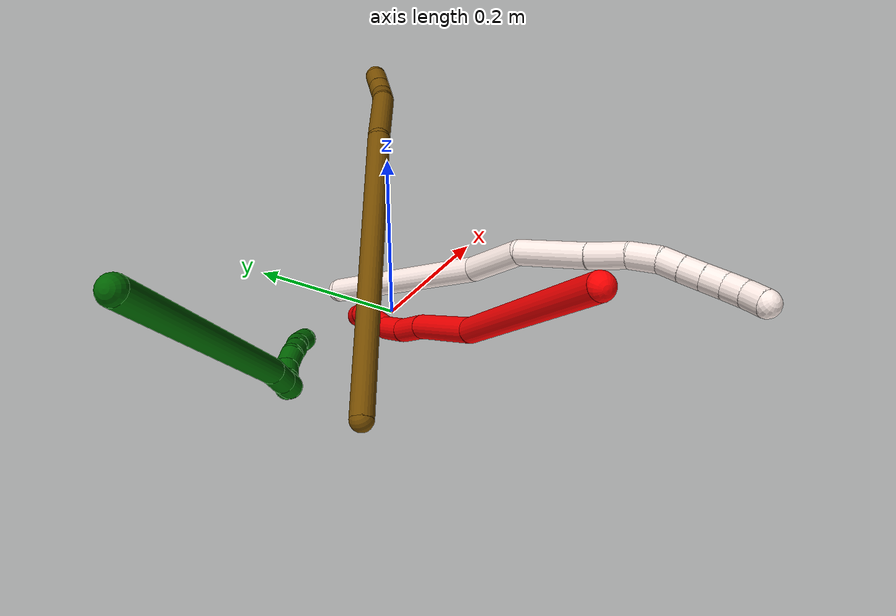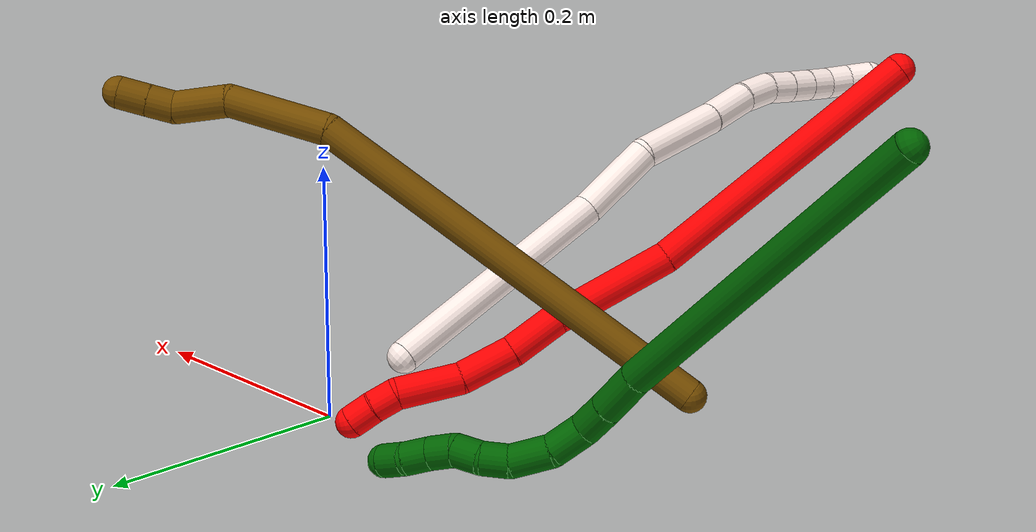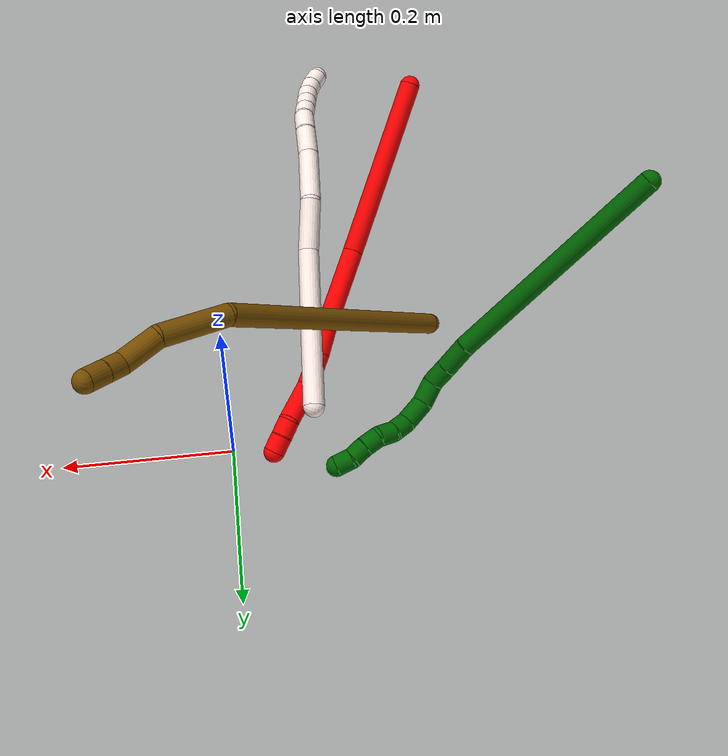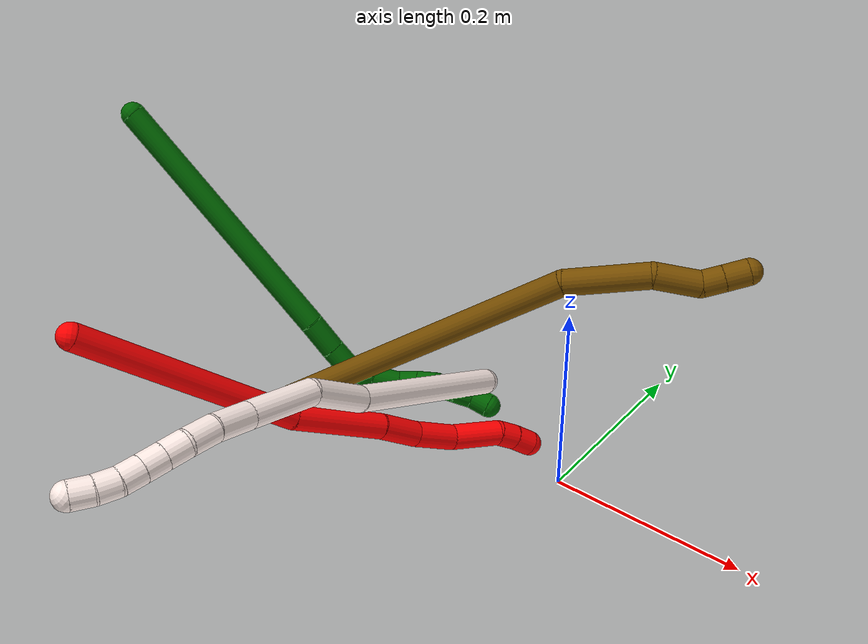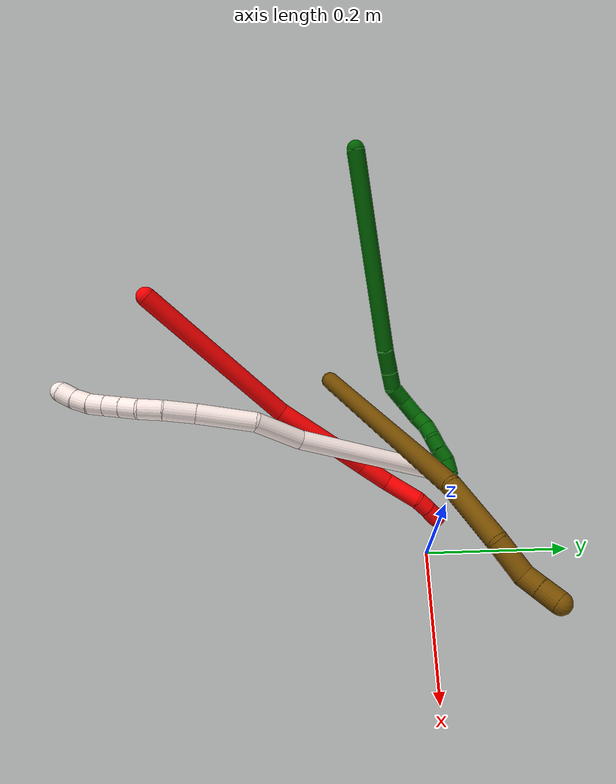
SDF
<sdf version="1.7">
 <world name="default">
  <model name="2">
   <static>0</static>
   <link name="2">
    <collision name="collision-cylinder-e_1_1_4">
     <pose>0.029552 -0.036676 -0.103546 2.80118 0.262799 1.31106</pose>
     <geometry><cylinder><radius>0.0125</radius><length>0.227509</length></cylinder></geometry>
     <surface>
      <friction><ode><mu>1.16</mu><mu2>1.16</mu2><slip1>0</slip1><slip2>0</slip2></ode></friction>
      <contact><ode><kp>1e+06</kp><kd>1</kd><max_vel>0</max_vel><min_depth>0.001</min_depth></ode></contact>
     </surface>
    </collision>
    <visual name="visual-cylinder-e_1_1_4">
     <pose>0.029552 -0.036676 -0.103546 2.80118 0.262799 1.31106</pose>
     <geometry><cylinder><radius>0.0125</radius><length>0.227509</length></cylinder></geometry>
     <material><ambient>1 0 0 1</ambient></material>
    </visual>
    <collision name="collision-cylinder-e_2_4_5">
     <pose>0.061602 -0.088009 -0.252565 2.82978 0.052256 0.329516</pose>
     <geometry><cylinder><radius>0.0125</radius><length>0.095686</length></cylinder></geometry>
     <surface>
      <friction><ode><mu>1.16</mu><mu2>1.16</mu2><slip1>0</slip1><slip2>0</slip2></ode></friction>
      <contact><ode><kp>1e+06</kp><kd>1</kd><max_vel>0</max_vel><min_depth>0.001</min_depth></ode></contact>
     </surface>
    </collision>
    <visual name="visual-cylinder-e_2_4_5">
     <pose>0.061602 -0.088009 -0.252565 2.82978 0.052256 0.329516</pose>
     <geometry><cylinder><radius>0.0125</radius><length>0.095686</length></cylinder></geometry>
     <material><ambient>1 0 0 1</ambient></material>
    </visual>
    <collision name="collision-cylinder-e_3_5_6">
     <pose>0.06745 -0.110586 -0.317532 2.7557 0.157833 0.769215</pose>
     <geometry><cylinder><radius>0.0125</radius><length>0.04261</length></cylinder></geometry>
     <surface>
      <friction><ode><mu>1.16</mu><mu2>1.16</mu2><slip1>0</slip1><slip2>0</slip2></ode></friction>
      <contact><ode><kp>1e+06</kp><kd>1</kd><max_vel>0</max_vel><min_depth>0.001</min_depth></ode></contact>
     </surface>
    </collision>
    <visual name="visual-cylinder-e_3_5_6">
     <pose>0.06745 -0.110586 -0.317532 2.7557 0.157833 0.769215</pose>
     <geometry><cylinder><radius>0.0125</radius><length>0.04261</length></cylinder></geometry>
     <material><ambient>1 0 0 1</ambient></material>
    </visual>
    <collision name="collision-cylinder-e_4_6_7">
     <pose>0.071557 -0.124767 -0.357898 2.85013 0.034801 0.236033</pose>
     <geometry><cylinder><radius>0.0125</radius><length>0.043609</length></cylinder></geometry>
     <surface>
      <friction><ode><mu>1.16</mu><mu2>1.16</mu2><slip1>0</slip1><slip2>0</slip2></ode></friction>
      <contact><ode><kp>1e+06</kp><kd>1</kd><max_vel>0</max_vel><min_depth>0.001</min_depth></ode></contact>
     </surface>
    </collision>
    <visual name="visual-cylinder-e_4_6_7">
     <pose>0.071557 -0.124767 -0.357898 2.85013 0.034801 0.236033</pose>
     <geometry><cylinder><radius>0.0125</radius><length>0.043609</length></cylinder></geometry>
     <material><ambient>1 0 0 1</ambient></material>
    </visual>
    <collision name="collision-cylinder-e_5_7_8">
     <pose>0.067951 -0.134702 -0.403278 2.99281 -0.174331 -1.72926</pose>
     <geometry><cylinder><radius>0.0125</radius><length>0.050327</length></cylinder></geometry>
     <surface>
      <friction><ode><mu>1.16</mu><mu2>1.16</mu2><slip1>0</slip1><slip2>0</slip2></ode></friction>
      <contact><ode><kp>1e+06</kp><kd>1</kd><max_vel>0</max_vel><min_depth>0.001</min_depth></ode></contact>
     </surface>
    </collision>
    <visual name="visual-cylinder-e_5_7_8">
     <pose>0.067951 -0.134702 -0.403278 2.99281 -0.174331 -1.72926</pose>
     <geometry><cylinder><radius>0.0125</radius><length>0.050327</length></cylinder></geometry>
     <material><ambient>1 0 0 1</ambient></material>
    </visual>
    <collision name="collision-cylinder-e_6_8_9">
     <pose>0.065116 -0.140553 -0.437444 2.91989 0.153281 1.20785</pose>
     <geometry><cylinder><radius>0.0125</radius><length>0.020035</length></cylinder></geometry>
     <surface>
      <friction><ode><mu>1.16</mu><mu2>1.16</mu2><slip1>0</slip1><slip2>0</slip2></ode></friction>
      <contact><ode><kp>1e+06</kp><kd>1</kd><max_vel>0</max_vel><min_depth>0.001</min_depth></ode></contact>
     </surface>
    </collision>
    <visual name="visual-cylinder-e_6_8_9">
     <pose>0.065116 -0.140553 -0.437444 2.91989 0.153281 1.20785</pose>
     <geometry><cylinder><radius>0.0125</radius><length>0.020035</length></cylinder></geometry>
     <material><ambient>1 0 0 1</ambient></material>
    </visual>
    <collision name="collision-cylinder-e_7_9_2">
     <pose>0.069306 -0.144835 -0.456627 2.92401 0.266212 1.77307</pose>
     <geometry><cylinder><radius>0.0125</radius><length>0.020223</length></cylinder></geometry>
     <surface>
      <friction><ode><mu>1.16</mu><mu2>1.16</mu2><slip1>0</slip1><slip2>0</slip2></ode></friction>
      <contact><ode><kp>1e+06</kp><kd>1</kd><max_vel>0</max_vel><min_depth>0.001</min_depth></ode></contact>
     </surface>
    </collision>
    <visual name="visual-cylinder-e_7_9_2">
     <pose>0.069306 -0.144835 -0.456627 2.92401 0.266212 1.77307</pose>
     <geometry><cylinder><radius>0.0125</radius><length>0.020223</length></cylinder></geometry>
     <material><ambient>1 0 0 1</ambient></material>
    </visual>
    <collision name="collision-sphere-2">
     <pose>0.071966 -0.146941 -0.466153 0 -0 0</pose>
     <geometry><sphere><radius>0.0125</radius></sphere></geometry>
     <surface>
      <friction><ode><mu>1.16</mu><mu2>1.16</mu2><slip1>0</slip1><slip2>0</slip2></ode></friction>
      <contact><ode><kp>1e+06</kp><kd>1</kd><max_vel>0</max_vel><min_depth>0.001</min_depth></ode></contact>
     </surface>
    </collision>
    <visual name="visual-sphere-2">
     <pose>0.071966 -0.146941 -0.466153 0 -0 0</pose>
     <geometry><sphere><radius>0.0125</radius></sphere></geometry>
     <material><ambient>1 0 0 1</ambient></material>
    </visual>
    <collision name="collision-sphere-9">
     <pose>0.066646 -0.142729 -0.447102 0 -0 0</pose>
     <geometry><sphere><radius>0.0125</radius></sphere></geometry>
     <surface>
      <friction><ode><mu>1.16</mu><mu2>1.16</mu2><slip1>0</slip1><slip2>0</slip2></ode></friction>
      <contact><ode><kp>1e+06</kp><kd>1</kd><max_vel>0</max_vel><min_depth>0.001</min_depth></ode></contact>
     </surface>
    </collision>
    <visual name="visual-sphere-9">
     <pose>0.066646 -0.142729 -0.447102 0 -0 0</pose>
     <geometry><sphere><radius>0.0125</radius></sphere></geometry>
     <material><ambient>1 0 0 1</ambient></material>
    </visual>
    <collision name="collision-sphere-4">
     <pose>0.059103 -0.073352 -0.207091 0 -0 0</pose>
     <geometry><sphere><radius>0.0125</radius></sphere></geometry>
     <surface>
      <friction><ode><mu>1.16</mu><mu2>1.16</mu2><slip1>0</slip1><slip2>0</slip2></ode></friction>
      <contact><ode><kp>1e+06</kp><kd>1</kd><max_vel>0</max_vel><min_depth>0.001</min_depth></ode></contact>
     </surface>
    </collision>
    <visual name="visual-sphere-4">
     <pose>0.059103 -0.073352 -0.207091 0 -0 0</pose>
     <geometry><sphere><radius>0.0125</radius></sphere></geometry>
     <material><ambient>1 0 0 1</ambient></material>
    </visual>
    <collision name="collision-sphere-1">
     <geometry><sphere><radius>0.0125</radius></sphere></geometry>
     <surface>
      <friction><ode><mu>1.16</mu><mu2>1.16</mu2><slip1>0</slip1><slip2>0</slip2></ode></friction>
      <contact><ode><kp>1e+06</kp><kd>1</kd><max_vel>0</max_vel><min_depth>0.001</min_depth></ode></contact>
     </surface>
    </collision>
    <visual name="visual-sphere-1">
     <geometry><sphere><radius>0.0125</radius></sphere></geometry>
     <material><ambient>1 0 0 1</ambient></material>
    </visual>
    <collision name="collision-sphere-8">
     <pose>0.063587 -0.138376 -0.427786 0 -0 0</pose>
     <geometry><sphere><radius>0.0125</radius></sphere></geometry>
     <surface>
      <friction><ode><mu>1.16</mu><mu2>1.16</mu2><slip1>0</slip1><slip2>0</slip2></ode></friction>
      <contact><ode><kp>1e+06</kp><kd>1</kd><max_vel>0</max_vel><min_depth>0.001</min_depth></ode></contact>
     </surface>
    </collision>
    <visual name="visual-sphere-8">
     <pose>0.063587 -0.138376 -0.427786 0 -0 0</pose>
     <geometry><sphere><radius>0.0125</radius></sphere></geometry>
     <material><ambient>1 0 0 1</ambient></material>
    </visual>
    <collision name="collision-sphere-5">
     <pose>0.064101 -0.102667 -0.298039 0 -0 0</pose>
     <geometry><sphere><radius>0.0125</radius></sphere></geometry>
     <surface>
      <friction><ode><mu>1.16</mu><mu2>1.16</mu2><slip1>0</slip1><slip2>0</slip2></ode></friction>
      <contact><ode><kp>1e+06</kp><kd>1</kd><max_vel>0</max_vel><min_depth>0.001</min_depth></ode></contact>
     </surface>
    </collision>
    <visual name="visual-sphere-5">
     <pose>0.064101 -0.102667 -0.298039 0 -0 0</pose>
     <geometry><sphere><radius>0.0125</radius></sphere></geometry>
     <material><ambient>1 0 0 1</ambient></material>
    </visual>
    <collision name="collision-sphere-6">
     <pose>0.070799 -0.118505 -0.337025 0 -0 0</pose>
     <geometry><sphere><radius>0.0125</radius></sphere></geometry>
     <surface>
      <friction><ode><mu>1.16</mu><mu2>1.16</mu2><slip1>0</slip1><slip2>0</slip2></ode></friction>
      <contact><ode><kp>1e+06</kp><kd>1</kd><max_vel>0</max_vel><min_depth>0.001</min_depth></ode></contact>
     </surface>
    </collision>
    <visual name="visual-sphere-6">
     <pose>0.070799 -0.118505 -0.337025 0 -0 0</pose>
     <geometry><sphere><radius>0.0125</radius></sphere></geometry>
     <material><ambient>1 0 0 1</ambient></material>
    </visual>
    <collision name="collision-sphere-7">
     <pose>0.072316 -0.131028 -0.37877 0 -0 0</pose>
     <geometry><sphere><radius>0.0125</radius></sphere></geometry>
     <surface>
      <friction><ode><mu>1.16</mu><mu2>1.16</mu2><slip1>0</slip1><slip2>0</slip2></ode></friction>
      <contact><ode><kp>1e+06</kp><kd>1</kd><max_vel>0</max_vel><min_depth>0.001</min_depth></ode></contact>
     </surface>
    </collision>
    <visual name="visual-sphere-7">
     <pose>0.072316 -0.131028 -0.37877 0 -0 0</pose>
     <geometry><sphere><radius>0.0125</radius></sphere></geometry>
     <material><ambient>1 0 0 1</ambient></material>
    </visual>
    <inertial>
     <pose>0.049477 -0.078885 -0.230314 0 -0 0</pose>
     <mass>0.5</mass>
     <inertia>
      <ixx>0.001283</ixx>
      <ixy>0</ixy>
      <ixz>0</ixz>
      <iyy>0.000699</iyy>
      <iyz>0</iyz>
      <izz>5.3e-05</izz>
     </inertia>
    </inertial>
   </link>
   <pose>-0.260994 -0.352629 0.263068 1.00253 1.04981 -1.26838</pose>
  </model>
  <model name="6">
   <static>0</static>
   <link name="6">
    <collision name="collision-cylinder-e_1_1_4">
     <pose>-0.03055 -0.001041 -0.135612 3.13392 -0.221573 -3.07262</pose>
     <geometry><cylinder><radius>0.0125</radius><length>0.278029</length></cylinder></geometry>
     <surface>
      <friction><ode><mu>1.16</mu><mu2>1.16</mu2><slip1>0</slip1><slip2>0</slip2></ode></friction>
      <contact><ode><kp>1e+06</kp><kd>1</kd><max_vel>0</max_vel><min_depth>0.001</min_depth></ode></contact>
     </surface>
    </collision>
    <visual name="visual-cylinder-e_1_1_4">
     <pose>-0.03055 -0.001041 -0.135612 3.13392 -0.221573 -3.07262</pose>
     <geometry><cylinder><radius>0.0125</radius><length>0.278029</length></cylinder></geometry>
     <material><ambient>0 0.392157 0.003922 1</ambient></material>
    </visual>
    <collision name="collision-cylinder-e_2_4_5">
     <pose>-0.065794 -0.000406 -0.288128 -3.04279 -0.269561 2.44231</pose>
     <geometry><cylinder><radius>0.0125</radius><length>0.035248</length></cylinder></geometry>
     <surface>
      <friction><ode><mu>1.16</mu><mu2>1.16</mu2><slip1>0</slip1><slip2>0</slip2></ode></friction>
      <contact><ode><kp>1e+06</kp><kd>1</kd><max_vel>0</max_vel><min_depth>0.001</min_depth></ode></contact>
     </surface>
    </collision>
    <visual name="visual-cylinder-e_2_4_5">
     <pose>-0.065794 -0.000406 -0.288128 -3.04279 -0.269561 2.44231</pose>
     <geometry><cylinder><radius>0.0125</radius><length>0.035248</length></cylinder></geometry>
     <material><ambient>0 0.392157 0.003922 1</ambient></material>
    </visual>
    <collision name="collision-cylinder-e_3_5_6">
     <pose>-0.073441 0.002275 -0.317409 -3.06056 -0.233488 2.47602</pose>
     <geometry><cylinder><radius>0.0125</radius><length>0.025526</length></cylinder></geometry>
     <surface>
      <friction><ode><mu>1.16</mu><mu2>1.16</mu2><slip1>0</slip1><slip2>0</slip2></ode></friction>
      <contact><ode><kp>1e+06</kp><kd>1</kd><max_vel>0</max_vel><min_depth>0.001</min_depth></ode></contact>
     </surface>
    </collision>
    <visual name="visual-cylinder-e_3_5_6">
     <pose>-0.073441 0.002275 -0.317409 -3.06056 -0.233488 2.47602</pose>
     <geometry><cylinder><radius>0.0125</radius><length>0.025526</length></cylinder></geometry>
     <material><ambient>0 0.392157 0.003922 1</ambient></material>
    </visual>
    <collision name="collision-cylinder-e_4_6_7">
     <pose>-0.075247 0.008921 -0.342562 -2.72584 0.081899 -0.383725</pose>
     <geometry><cylinder><radius>0.0125</radius><length>0.028029</length></cylinder></geometry>
     <surface>
      <friction><ode><mu>1.16</mu><mu2>1.16</mu2><slip1>0</slip1><slip2>0</slip2></ode></friction>
      <contact><ode><kp>1e+06</kp><kd>1</kd><max_vel>0</max_vel><min_depth>0.001</min_depth></ode></contact>
     </surface>
    </collision>
    <visual name="visual-cylinder-e_4_6_7">
     <pose>-0.075247 0.008921 -0.342562 -2.72584 0.081899 -0.383725</pose>
     <geometry><cylinder><radius>0.0125</radius><length>0.028029</length></cylinder></geometry>
     <material><ambient>0 0.392157 0.003922 1</ambient></material>
    </visual>
    <collision name="collision-cylinder-e_5_7_8">
     <pose>-0.068552 0.017694 -0.36959 -2.92519 0.363386 -2.07368</pose>
     <geometry><cylinder><radius>0.0125</radius><length>0.031219</length></cylinder></geometry>
     <surface>
      <friction><ode><mu>1.16</mu><mu2>1.16</mu2><slip1>0</slip1><slip2>0</slip2></ode></friction>
      <contact><ode><kp>1e+06</kp><kd>1</kd><max_vel>0</max_vel><min_depth>0.001</min_depth></ode></contact>
     </surface>
    </collision>
    <visual name="visual-cylinder-e_5_7_8">
     <pose>-0.068552 0.017694 -0.36959 -2.92519 0.363386 -2.07368</pose>
     <geometry><cylinder><radius>0.0125</radius><length>0.031219</length></cylinder></geometry>
     <material><ambient>0 0.392157 0.003922 1</ambient></material>
    </visual>
    <collision name="collision-cylinder-e_6_8_9">
     <pose>-0.056263 0.021119 -0.392004 -3.10581 0.68988 -3.04207</pose>
     <geometry><cylinder><radius>0.0125</radius><length>0.021184</length></cylinder></geometry>
     <surface>
      <friction><ode><mu>1.16</mu><mu2>1.16</mu2><slip1>0</slip1><slip2>0</slip2></ode></friction>
      <contact><ode><kp>1e+06</kp><kd>1</kd><max_vel>0</max_vel><min_depth>0.001</min_depth></ode></contact>
     </surface>
    </collision>
    <visual name="visual-cylinder-e_6_8_9">
     <pose>-0.056263 0.021119 -0.392004 -3.10581 0.68988 -3.04207</pose>
     <geometry><cylinder><radius>0.0125</radius><length>0.021184</length></cylinder></geometry>
     <material><ambient>0 0.392157 0.003922 1</ambient></material>
    </visual>
    <collision name="collision-cylinder-e_7_9_10">
     <pose>-0.043365 0.018736 -0.407981 2.81161 0.640687 2.21131</pose>
     <geometry><cylinder><radius>0.0125</radius><length>0.020602</length></cylinder></geometry>
     <surface>
      <friction><ode><mu>1.16</mu><mu2>1.16</mu2><slip1>0</slip1><slip2>0</slip2></ode></friction>
      <contact><ode><kp>1e+06</kp><kd>1</kd><max_vel>0</max_vel><min_depth>0.001</min_depth></ode></contact>
     </surface>
    </collision>
    <visual name="visual-cylinder-e_7_9_10">
     <pose>-0.043365 0.018736 -0.407981 2.81161 0.640687 2.21131</pose>
     <geometry><cylinder><radius>0.0125</radius><length>0.020602</length></cylinder></geometry>
     <material><ambient>0 0.392157 0.003922 1</ambient></material>
    </visual>
    <collision name="collision-cylinder-e_8_10_11">
     <pose>-0.033946 0.015653 -0.425303 3.09882 0.33011 2.88615</pose>
     <geometry><cylinder><radius>0.0125</radius><length>0.020122</length></cylinder></geometry>
     <surface>
      <friction><ode><mu>1.16</mu><mu2>1.16</mu2><slip1>0</slip1><slip2>0</slip2></ode></friction>
      <contact><ode><kp>1e+06</kp><kd>1</kd><max_vel>0</max_vel><min_depth>0.001</min_depth></ode></contact>
     </surface>
    </collision>
    <visual name="visual-cylinder-e_8_10_11">
     <pose>-0.033946 0.015653 -0.425303 3.09882 0.33011 2.88615</pose>
     <geometry><cylinder><radius>0.0125</radius><length>0.020122</length></cylinder></geometry>
     <material><ambient>0 0.392157 0.003922 1</ambient></material>
    </visual>
    <collision name="collision-cylinder-e_9_11_12">
     <pose>-0.027441 0.016168 -0.444244 -3.04412 0.329741 -2.57125</pose>
     <geometry><cylinder><radius>0.0125</radius><length>0.020034</length></cylinder></geometry>
     <surface>
      <friction><ode><mu>1.16</mu><mu2>1.16</mu2><slip1>0</slip1><slip2>0</slip2></ode></friction>
      <contact><ode><kp>1e+06</kp><kd>1</kd><max_vel>0</max_vel><min_depth>0.001</min_depth></ode></contact>
     </surface>
    </collision>
    <visual name="visual-cylinder-e_9_11_12">
     <pose>-0.027441 0.016168 -0.444244 -3.04412 0.329741 -2.57125</pose>
     <geometry><cylinder><radius>0.0125</radius><length>0.020034</length></cylinder></geometry>
     <material><ambient>0 0.392157 0.003922 1</ambient></material>
    </visual>
    <collision name="collision-cylinder-e_10_12_2">
     <pose>-0.022117 0.01494 -0.463223 2.92002 0.209515 1.51444</pose>
     <geometry><cylinder><radius>0.0125</radius><length>0.020008</length></cylinder></geometry>
     <surface>
      <friction><ode><mu>1.16</mu><mu2>1.16</mu2><slip1>0</slip1><slip2>0</slip2></ode></friction>
      <contact><ode><kp>1e+06</kp><kd>1</kd><max_vel>0</max_vel><min_depth>0.001</min_depth></ode></contact>
     </surface>
    </collision>
    <visual name="visual-cylinder-e_10_12_2">
     <pose>-0.022117 0.01494 -0.463223 2.92002 0.209515 1.51444</pose>
     <geometry><cylinder><radius>0.0125</radius><length>0.020008</length></cylinder></geometry>
     <material><ambient>0 0.392157 0.003922 1</ambient></material>
    </visual>
    <collision name="collision-sphere-2">
     <pose>-0.020036 0.01279 -0.472769 0 -0 0</pose>
     <geometry><sphere><radius>0.0125</radius></sphere></geometry>
     <surface>
      <friction><ode><mu>1.16</mu><mu2>1.16</mu2><slip1>0</slip1><slip2>0</slip2></ode></friction>
      <contact><ode><kp>1e+06</kp><kd>1</kd><max_vel>0</max_vel><min_depth>0.001</min_depth></ode></contact>
     </surface>
    </collision>
    <visual name="visual-sphere-2">
     <pose>-0.020036 0.01279 -0.472769 0 -0 0</pose>
     <geometry><sphere><radius>0.0125</radius></sphere></geometry>
     <material><ambient>0 0.392157 0.003922 1</ambient></material>
    </visual>
    <collision name="collision-sphere-12">
     <pose>-0.024198 0.017091 -0.453677 0 -0 0</pose>
     <geometry><sphere><radius>0.0125</radius></sphere></geometry>
     <surface>
      <friction><ode><mu>1.16</mu><mu2>1.16</mu2><slip1>0</slip1><slip2>0</slip2></ode></friction>
      <contact><ode><kp>1e+06</kp><kd>1</kd><max_vel>0</max_vel><min_depth>0.001</min_depth></ode></contact>
     </surface>
    </collision>
    <visual name="visual-sphere-12">
     <pose>-0.024198 0.017091 -0.453677 0 -0 0</pose>
     <geometry><sphere><radius>0.0125</radius></sphere></geometry>
     <material><ambient>0 0.392157 0.003922 1</ambient></material>
    </visual>
    <collision name="collision-sphere-11">
     <pose>-0.030685 0.015246 -0.434812 0 -0 0</pose>
     <geometry><sphere><radius>0.0125</radius></sphere></geometry>
     <surface>
      <friction><ode><mu>1.16</mu><mu2>1.16</mu2><slip1>0</slip1><slip2>0</slip2></ode></friction>
      <contact><ode><kp>1e+06</kp><kd>1</kd><max_vel>0</max_vel><min_depth>0.001</min_depth></ode></contact>
     </surface>
    </collision>
    <visual name="visual-sphere-11">
     <pose>-0.030685 0.015246 -0.434812 0 -0 0</pose>
     <geometry><sphere><radius>0.0125</radius></sphere></geometry>
     <material><ambient>0 0.392157 0.003922 1</ambient></material>
    </visual>
    <collision name="collision-sphere-10">
     <pose>-0.037207 0.01606 -0.415793 0 -0 0</pose>
     <geometry><sphere><radius>0.0125</radius></sphere></geometry>
     <surface>
      <friction><ode><mu>1.16</mu><mu2>1.16</mu2><slip1>0</slip1><slip2>0</slip2></ode></friction>
      <contact><ode><kp>1e+06</kp><kd>1</kd><max_vel>0</max_vel><min_depth>0.001</min_depth></ode></contact>
     </surface>
    </collision>
    <visual name="visual-sphere-10">
     <pose>-0.037207 0.01606 -0.415793 0 -0 0</pose>
     <geometry><sphere><radius>0.0125</radius></sphere></geometry>
     <material><ambient>0 0.392157 0.003922 1</ambient></material>
    </visual>
    <collision name="collision-sphere-9">
     <pose>-0.049522 0.021412 -0.400168 0 -0 0</pose>
     <geometry><sphere><radius>0.0125</radius></sphere></geometry>
     <surface>
      <friction><ode><mu>1.16</mu><mu2>1.16</mu2><slip1>0</slip1><slip2>0</slip2></ode></friction>
      <contact><ode><kp>1e+06</kp><kd>1</kd><max_vel>0</max_vel><min_depth>0.001</min_depth></ode></contact>
     </surface>
    </collision>
    <visual name="visual-sphere-9">
     <pose>-0.049522 0.021412 -0.400168 0 -0 0</pose>
     <geometry><sphere><radius>0.0125</radius></sphere></geometry>
     <material><ambient>0 0.392157 0.003922 1</ambient></material>
    </visual>
    <collision name="collision-sphere-4">
     <pose>-0.061101 -0.002082 -0.271224 0 -0 0</pose>
     <geometry><sphere><radius>0.0125</radius></sphere></geometry>
     <surface>
      <friction><ode><mu>1.16</mu><mu2>1.16</mu2><slip1>0</slip1><slip2>0</slip2></ode></friction>
      <contact><ode><kp>1e+06</kp><kd>1</kd><max_vel>0</max_vel><min_depth>0.001</min_depth></ode></contact>
     </surface>
    </collision>
    <visual name="visual-sphere-4">
     <pose>-0.061101 -0.002082 -0.271224 0 -0 0</pose>
     <geometry><sphere><radius>0.0125</radius></sphere></geometry>
     <material><ambient>0 0.392157 0.003922 1</ambient></material>
    </visual>
    <collision name="collision-sphere-1">
     <geometry><sphere><radius>0.0125</radius></sphere></geometry>
     <surface>
      <friction><ode><mu>1.16</mu><mu2>1.16</mu2><slip1>0</slip1><slip2>0</slip2></ode></friction>
      <contact><ode><kp>1e+06</kp><kd>1</kd><max_vel>0</max_vel><min_depth>0.001</min_depth></ode></contact>
     </surface>
    </collision>
    <visual name="visual-sphere-1">
     <geometry><sphere><radius>0.0125</radius></sphere></geometry>
     <material><ambient>0 0.392157 0.003922 1</ambient></material>
    </visual>
    <collision name="collision-sphere-8">
     <pose>-0.063004 0.020827 -0.383839 0 -0 0</pose>
     <geometry><sphere><radius>0.0125</radius></sphere></geometry>
     <surface>
      <friction><ode><mu>1.16</mu><mu2>1.16</mu2><slip1>0</slip1><slip2>0</slip2></ode></friction>
      <contact><ode><kp>1e+06</kp><kd>1</kd><max_vel>0</max_vel><min_depth>0.001</min_depth></ode></contact>
     </surface>
    </collision>
    <visual name="visual-sphere-8">
     <pose>-0.063004 0.020827 -0.383839 0 -0 0</pose>
     <geometry><sphere><radius>0.0125</radius></sphere></geometry>
     <material><ambient>0 0.392157 0.003922 1</ambient></material>
    </visual>
    <collision name="collision-sphere-5">
     <pose>-0.070488 0.00127 -0.305033 0 -0 0</pose>
     <geometry><sphere><radius>0.0125</radius></sphere></geometry>
     <surface>
      <friction><ode><mu>1.16</mu><mu2>1.16</mu2><slip1>0</slip1><slip2>0</slip2></ode></friction>
      <contact><ode><kp>1e+06</kp><kd>1</kd><max_vel>0</max_vel><min_depth>0.001</min_depth></ode></contact>
     </surface>
    </collision>
    <visual name="visual-sphere-5">
     <pose>-0.070488 0.00127 -0.305033 0 -0 0</pose>
     <geometry><sphere><radius>0.0125</radius></sphere></geometry>
     <material><ambient>0 0.392157 0.003922 1</ambient></material>
    </visual>
    <collision name="collision-sphere-6">
     <pose>-0.076394 0.00328 -0.329785 0 -0 0</pose>
     <geometry><sphere><radius>0.0125</radius></sphere></geometry>
     <surface>
      <friction><ode><mu>1.16</mu><mu2>1.16</mu2><slip1>0</slip1><slip2>0</slip2></ode></friction>
      <contact><ode><kp>1e+06</kp><kd>1</kd><max_vel>0</max_vel><min_depth>0.001</min_depth></ode></contact>
     </surface>
    </collision>
    <visual name="visual-sphere-6">
     <pose>-0.076394 0.00328 -0.329785 0 -0 0</pose>
     <geometry><sphere><radius>0.0125</radius></sphere></geometry>
     <material><ambient>0 0.392157 0.003922 1</ambient></material>
    </visual>
    <collision name="collision-sphere-7">
     <pose>-0.074101 0.014562 -0.35534 0 -0 0</pose>
     <geometry><sphere><radius>0.0125</radius></sphere></geometry>
     <surface>
      <friction><ode><mu>1.16</mu><mu2>1.16</mu2><slip1>0</slip1><slip2>0</slip2></ode></friction>
      <contact><ode><kp>1e+06</kp><kd>1</kd><max_vel>0</max_vel><min_depth>0.001</min_depth></ode></contact>
     </surface>
    </collision>
    <visual name="visual-sphere-7">
     <pose>-0.074101 0.014562 -0.35534 0 -0 0</pose>
     <geometry><sphere><radius>0.0125</radius></sphere></geometry>
     <material><ambient>0 0.392157 0.003922 1</ambient></material>
    </visual>
    <inertial>
     <pose>-0.041395 0.004656 -0.241075 0 -0 0</pose>
     <mass>0.5</mass>
     <inertia>
      <ixx>-0.001883</ixx>
      <ixy>0</ixy>
      <ixz>0</ixz>
      <iyy>0.001691</iyy>
      <iyz>0</iyz>
      <izz>0.000368</izz>
     </inertia>
    </inertial>
   </link>
   <pose>-0.475951 -0.084612 0.292848 -0.569876 -0.853317 1.04187</pose>
  </model>
  <model name="11">
   <static>0</static>
   <link name="11">
    <collision name="collision-cylinder-e_1_1_4">
     <pose>-0.006504 -0.04889 0.083163 0.531462 -0.067323 -0.018329</pose>
     <geometry><cylinder><radius>0.0125</radius><length>0.193376</length></cylinder></geometry>
     <surface>
      <friction><ode><mu>1.16</mu><mu2>1.16</mu2><slip1>0</slip1><slip2>0</slip2></ode></friction>
      <contact><ode><kp>1e+06</kp><kd>1</kd><max_vel>0</max_vel><min_depth>0.001</min_depth></ode></contact>
     </surface>
    </collision>
    <visual name="visual-cylinder-e_1_1_4">
     <pose>-0.006504 -0.04889 0.083163 0.531462 -0.067323 -0.018329</pose>
     <geometry><cylinder><radius>0.0125</radius><length>0.193376</length></cylinder></geometry>
     <material><ambient>1 0.933333 0.909804 1</ambient></material>
    </visual>
    <collision name="collision-cylinder-e_2_4_5">
     <pose>-0.012878 -0.109167 0.196385 0.362121 0.004059 0.000743</pose>
     <geometry><cylinder><radius>0.0125</radius><length>0.06429</length></cylinder></geometry>
     <surface>
      <friction><ode><mu>1.16</mu><mu2>1.16</mu2><slip1>0</slip1><slip2>0</slip2></ode></friction>
      <contact><ode><kp>1e+06</kp><kd>1</kd><max_vel>0</max_vel><min_depth>0.001</min_depth></ode></contact>
     </surface>
    </collision>
    <visual name="visual-cylinder-e_2_4_5">
     <pose>-0.012878 -0.109167 0.196385 0.362121 0.004059 0.000743</pose>
     <geometry><cylinder><radius>0.0125</radius><length>0.06429</length></cylinder></geometry>
     <material><ambient>1 0.933333 0.909804 1</ambient></material>
    </visual>
    <collision name="collision-cylinder-e_3_5_6">
     <pose>-0.020014 -0.14291 0.254455 0.673598 -0.200028 -0.070243</pose>
     <geometry><cylinder><radius>0.0125</radius><length>0.073134</length></cylinder></geometry>
     <surface>
      <friction><ode><mu>1.16</mu><mu2>1.16</mu2><slip1>0</slip1><slip2>0</slip2></ode></friction>
      <contact><ode><kp>1e+06</kp><kd>1</kd><max_vel>0</max_vel><min_depth>0.001</min_depth></ode></contact>
     </surface>
    </collision>
    <visual name="visual-cylinder-e_3_5_6">
     <pose>-0.020014 -0.14291 0.254455 0.673598 -0.200028 -0.070243</pose>
     <geometry><cylinder><radius>0.0125</radius><length>0.073134</length></cylinder></geometry>
     <material><ambient>1 0.933333 0.909804 1</ambient></material>
    </visual>
    <collision name="collision-cylinder-e_4_6_7">
     <pose>-0.029802 -0.177483 0.297355 0.687136 -0.130268 -0.046662</pose>
     <geometry><cylinder><radius>0.0125</radius><length>0.038848</length></cylinder></geometry>
     <surface>
      <friction><ode><mu>1.16</mu><mu2>1.16</mu2><slip1>0</slip1><slip2>0</slip2></ode></friction>
      <contact><ode><kp>1e+06</kp><kd>1</kd><max_vel>0</max_vel><min_depth>0.001</min_depth></ode></contact>
     </surface>
    </collision>
    <visual name="visual-cylinder-e_4_6_7">
     <pose>-0.029802 -0.177483 0.297355 0.687136 -0.130268 -0.046662</pose>
     <geometry><cylinder><radius>0.0125</radius><length>0.038848</length></cylinder></geometry>
     <material><ambient>1 0.933333 0.909804 1</ambient></material>
    </visual>
    <collision name="collision-cylinder-e_5_7_8">
     <pose>-0.035917 -0.199604 0.322009 0.792428 -0.252664 -0.106165</pose>
     <geometry><cylinder><radius>0.0125</radius><length>0.028729</length></cylinder></geometry>
     <surface>
      <friction><ode><mu>1.16</mu><mu2>1.16</mu2><slip1>0</slip1><slip2>0</slip2></ode></friction>
      <contact><ode><kp>1e+06</kp><kd>1</kd><max_vel>0</max_vel><min_depth>0.001</min_depth></ode></contact>
     </surface>
    </collision>
    <visual name="visual-cylinder-e_5_7_8">
     <pose>-0.035917 -0.199604 0.322009 0.792428 -0.252664 -0.106165</pose>
     <geometry><cylinder><radius>0.0125</radius><length>0.028729</length></cylinder></geometry>
     <material><ambient>1 0.933333 0.909804 1</ambient></material>
    </visual>
    <collision name="collision-cylinder-e_6_8_9">
     <pose>-0.044558 -0.216414 0.338098 0.829431 -0.494637 -0.221406</pose>
     <geometry><cylinder><radius>0.0125</radius><length>0.021279</length></cylinder></geometry>
     <surface>
      <friction><ode><mu>1.16</mu><mu2>1.16</mu2><slip1>0</slip1><slip2>0</slip2></ode></friction>
      <contact><ode><kp>1e+06</kp><kd>1</kd><max_vel>0</max_vel><min_depth>0.001</min_depth></ode></contact>
     </surface>
    </collision>
    <visual name="visual-cylinder-e_6_8_9">
     <pose>-0.044558 -0.216414 0.338098 0.829431 -0.494637 -0.221406</pose>
     <geometry><cylinder><radius>0.0125</radius><length>0.021279</length></cylinder></geometry>
     <material><ambient>1 0.933333 0.909804 1</ambient></material>
    </visual>
    <collision name="collision-cylinder-e_7_9_10">
     <pose>-0.054242 -0.229969 0.350478 0.831981 -0.475651 -0.213369</pose>
     <geometry><cylinder><radius>0.0125</radius><length>0.020233</length></cylinder></geometry>
     <surface>
      <friction><ode><mu>1.16</mu><mu2>1.16</mu2><slip1>0</slip1><slip2>0</slip2></ode></friction>
      <contact><ode><kp>1e+06</kp><kd>1</kd><max_vel>0</max_vel><min_depth>0.001</min_depth></ode></contact>
     </surface>
    </collision>
    <visual name="visual-cylinder-e_7_9_10">
     <pose>-0.054242 -0.229969 0.350478 0.831981 -0.475651 -0.213369</pose>
     <geometry><cylinder><radius>0.0125</radius><length>0.020233</length></cylinder></geometry>
     <material><ambient>1 0.933333 0.909804 1</ambient></material>
    </visual>
    <collision name="collision-cylinder-e_8_10_11">
     <pose>-0.063445 -0.243085 0.362644 0.813822 -0.474622 -0.207723</pose>
     <geometry><cylinder><radius>0.0125</radius><length>0.020005</length></cylinder></geometry>
     <surface>
      <friction><ode><mu>1.16</mu><mu2>1.16</mu2><slip1>0</slip1><slip2>0</slip2></ode></friction>
      <contact><ode><kp>1e+06</kp><kd>1</kd><max_vel>0</max_vel><min_depth>0.001</min_depth></ode></contact>
     </surface>
    </collision>
    <visual name="visual-cylinder-e_8_10_11">
     <pose>-0.063445 -0.243085 0.362644 0.813822 -0.474622 -0.207723</pose>
     <geometry><cylinder><radius>0.0125</radius><length>0.020005</length></cylinder></geometry>
     <material><ambient>1 0.933333 0.909804 1</ambient></material>
    </visual>
    <collision name="collision-cylinder-e_9_11_12">
     <pose>-0.07312 -0.254479 0.375805 0.609895 -0.535473 -0.172267</pose>
     <geometry><cylinder><radius>0.0125</radius><length>0.020005</length></cylinder></geometry>
     <surface>
      <friction><ode><mu>1.16</mu><mu2>1.16</mu2><slip1>0</slip1><slip2>0</slip2></ode></friction>
      <contact><ode><kp>1e+06</kp><kd>1</kd><max_vel>0</max_vel><min_depth>0.001</min_depth></ode></contact>
     </surface>
    </collision>
    <visual name="visual-cylinder-e_9_11_12">
     <pose>-0.07312 -0.254479 0.375805 0.609895 -0.535473 -0.172267</pose>
     <geometry><cylinder><radius>0.0125</radius><length>0.020005</length></cylinder></geometry>
     <material><ambient>1 0.933333 0.909804 1</ambient></material>
    </visual>
    <collision name="collision-cylinder-e_10_12_2">
     <pose>-0.083917 -0.262955 0.39034 0.442671 -0.602258 -0.139545</pose>
     <geometry><cylinder><radius>0.0125</radius><length>0.020101</length></cylinder></geometry>
     <surface>
      <friction><ode><mu>1.16</mu><mu2>1.16</mu2><slip1>0</slip1><slip2>0</slip2></ode></friction>
      <contact><ode><kp>1e+06</kp><kd>1</kd><max_vel>0</max_vel><min_depth>0.001</min_depth></ode></contact>
     </surface>
    </collision>
    <visual name="visual-cylinder-e_10_12_2">
     <pose>-0.083917 -0.262955 0.39034 0.442671 -0.602258 -0.139545</pose>
     <geometry><cylinder><radius>0.0125</radius><length>0.020101</length></cylinder></geometry>
     <material><ambient>1 0.933333 0.909804 1</ambient></material>
    </visual>
    <collision name="collision-sphere-2">
     <pose>-0.089611 -0.266502 0.397824 0 -0 0</pose>
     <geometry><sphere><radius>0.0125</radius></sphere></geometry>
     <surface>
      <friction><ode><mu>1.16</mu><mu2>1.16</mu2><slip1>0</slip1><slip2>0</slip2></ode></friction>
      <contact><ode><kp>1e+06</kp><kd>1</kd><max_vel>0</max_vel><min_depth>0.001</min_depth></ode></contact>
     </surface>
    </collision>
    <visual name="visual-sphere-2">
     <pose>-0.089611 -0.266502 0.397824 0 -0 0</pose>
     <geometry><sphere><radius>0.0125</radius></sphere></geometry>
     <material><ambient>1 0.933333 0.909804 1</ambient></material>
    </visual>
    <collision name="collision-sphere-12">
     <pose>-0.078224 -0.259407 0.382857 0 -0 0</pose>
     <geometry><sphere><radius>0.0125</radius></sphere></geometry>
     <surface>
      <friction><ode><mu>1.16</mu><mu2>1.16</mu2><slip1>0</slip1><slip2>0</slip2></ode></friction>
      <contact><ode><kp>1e+06</kp><kd>1</kd><max_vel>0</max_vel><min_depth>0.001</min_depth></ode></contact>
     </surface>
    </collision>
    <visual name="visual-sphere-12">
     <pose>-0.078224 -0.259407 0.382857 0 -0 0</pose>
     <geometry><sphere><radius>0.0125</radius></sphere></geometry>
     <material><ambient>1 0.933333 0.909804 1</ambient></material>
    </visual>
    <collision name="collision-sphere-11">
     <pose>-0.068016 -0.249552 0.368754 0 -0 0</pose>
     <geometry><sphere><radius>0.0125</radius></sphere></geometry>
     <surface>
      <friction><ode><mu>1.16</mu><mu2>1.16</mu2><slip1>0</slip1><slip2>0</slip2></ode></friction>
      <contact><ode><kp>1e+06</kp><kd>1</kd><max_vel>0</max_vel><min_depth>0.001</min_depth></ode></contact>
     </surface>
    </collision>
    <visual name="visual-sphere-11">
     <pose>-0.068016 -0.249552 0.368754 0 -0 0</pose>
     <geometry><sphere><radius>0.0125</radius></sphere></geometry>
     <material><ambient>1 0.933333 0.909804 1</ambient></material>
    </visual>
    <collision name="collision-sphere-10">
     <pose>-0.058874 -0.236618 0.356534 0 -0 0</pose>
     <geometry><sphere><radius>0.0125</radius></sphere></geometry>
     <surface>
      <friction><ode><mu>1.16</mu><mu2>1.16</mu2><slip1>0</slip1><slip2>0</slip2></ode></friction>
      <contact><ode><kp>1e+06</kp><kd>1</kd><max_vel>0</max_vel><min_depth>0.001</min_depth></ode></contact>
     </surface>
    </collision>
    <visual name="visual-sphere-10">
     <pose>-0.058874 -0.236618 0.356534 0 -0 0</pose>
     <geometry><sphere><radius>0.0125</radius></sphere></geometry>
     <material><ambient>1 0.933333 0.909804 1</ambient></material>
    </visual>
    <collision name="collision-sphere-9">
     <pose>-0.049609 -0.223321 0.344422 0 -0 0</pose>
     <geometry><sphere><radius>0.0125</radius></sphere></geometry>
     <surface>
      <friction><ode><mu>1.16</mu><mu2>1.16</mu2><slip1>0</slip1><slip2>0</slip2></ode></friction>
      <contact><ode><kp>1e+06</kp><kd>1</kd><max_vel>0</max_vel><min_depth>0.001</min_depth></ode></contact>
     </surface>
    </collision>
    <visual name="visual-sphere-9">
     <pose>-0.049609 -0.223321 0.344422 0 -0 0</pose>
     <geometry><sphere><radius>0.0125</radius></sphere></geometry>
     <material><ambient>1 0.933333 0.909804 1</ambient></material>
    </visual>
    <collision name="collision-sphere-4">
     <pose>-0.013009 -0.09778 0.166325 0 -0 0</pose>
     <geometry><sphere><radius>0.0125</radius></sphere></geometry>
     <surface>
      <friction><ode><mu>1.16</mu><mu2>1.16</mu2><slip1>0</slip1><slip2>0</slip2></ode></friction>
      <contact><ode><kp>1e+06</kp><kd>1</kd><max_vel>0</max_vel><min_depth>0.001</min_depth></ode></contact>
     </surface>
    </collision>
    <visual name="visual-sphere-4">
     <pose>-0.013009 -0.09778 0.166325 0 -0 0</pose>
     <geometry><sphere><radius>0.0125</radius></sphere></geometry>
     <material><ambient>1 0.933333 0.909804 1</ambient></material>
    </visual>
    <collision name="collision-sphere-1">
     <geometry><sphere><radius>0.0125</radius></sphere></geometry>
     <surface>
      <friction><ode><mu>1.16</mu><mu2>1.16</mu2><slip1>0</slip1><slip2>0</slip2></ode></friction>
      <contact><ode><kp>1e+06</kp><kd>1</kd><max_vel>0</max_vel><min_depth>0.001</min_depth></ode></contact>
     </surface>
    </collision>
    <visual name="visual-sphere-1">
     <geometry><sphere><radius>0.0125</radius></sphere></geometry>
     <material><ambient>1 0.933333 0.909804 1</ambient></material>
    </visual>
    <collision name="collision-sphere-8">
     <pose>-0.039507 -0.209507 0.331774 0 -0 0</pose>
     <geometry><sphere><radius>0.0125</radius></sphere></geometry>
     <surface>
      <friction><ode><mu>1.16</mu><mu2>1.16</mu2><slip1>0</slip1><slip2>0</slip2></ode></friction>
      <contact><ode><kp>1e+06</kp><kd>1</kd><max_vel>0</max_vel><min_depth>0.001</min_depth></ode></contact>
     </surface>
    </collision>
    <visual name="visual-sphere-8">
     <pose>-0.039507 -0.209507 0.331774 0 -0 0</pose>
     <geometry><sphere><radius>0.0125</radius></sphere></geometry>
     <material><ambient>1 0.933333 0.909804 1</ambient></material>
    </visual>
    <collision name="collision-sphere-5">
     <pose>-0.012748 -0.120555 0.226445 0 -0 0</pose>
     <geometry><sphere><radius>0.0125</radius></sphere></geometry>
     <surface>
      <friction><ode><mu>1.16</mu><mu2>1.16</mu2><slip1>0</slip1><slip2>0</slip2></ode></friction>
      <contact><ode><kp>1e+06</kp><kd>1</kd><max_vel>0</max_vel><min_depth>0.001</min_depth></ode></contact>
     </surface>
    </collision>
    <visual name="visual-sphere-5">
     <pose>-0.012748 -0.120555 0.226445 0 -0 0</pose>
     <geometry><sphere><radius>0.0125</radius></sphere></geometry>
     <material><ambient>1 0.933333 0.909804 1</ambient></material>
    </visual>
    <collision name="collision-sphere-6">
     <pose>-0.027279 -0.165266 0.282466 0 -0 0</pose>
     <geometry><sphere><radius>0.0125</radius></sphere></geometry>
     <surface>
      <friction><ode><mu>1.16</mu><mu2>1.16</mu2><slip1>0</slip1><slip2>0</slip2></ode></friction>
      <contact><ode><kp>1e+06</kp><kd>1</kd><max_vel>0</max_vel><min_depth>0.001</min_depth></ode></contact>
     </surface>
    </collision>
    <visual name="visual-sphere-6">
     <pose>-0.027279 -0.165266 0.282466 0 -0 0</pose>
     <geometry><sphere><radius>0.0125</radius></sphere></geometry>
     <material><ambient>1 0.933333 0.909804 1</ambient></material>
    </visual>
    <collision name="collision-sphere-7">
     <pose>-0.032326 -0.1897 0.312243 0 -0 0</pose>
     <geometry><sphere><radius>0.0125</radius></sphere></geometry>
     <surface>
      <friction><ode><mu>1.16</mu><mu2>1.16</mu2><slip1>0</slip1><slip2>0</slip2></ode></friction>
      <contact><ode><kp>1e+06</kp><kd>1</kd><max_vel>0</max_vel><min_depth>0.001</min_depth></ode></contact>
     </surface>
    </collision>
    <visual name="visual-sphere-7">
     <pose>-0.032326 -0.1897 0.312243 0 -0 0</pose>
     <geometry><sphere><radius>0.0125</radius></sphere></geometry>
     <material><ambient>1 0.933333 0.909804 1</ambient></material>
    </visual>
    <inertial>
     <pose>-0.024407 -0.128102 0.210048 0 -0 0</pose>
     <mass>0.5</mass>
     <inertia>
      <ixx>0.000661</ixx>
      <ixy>0</ixy>
      <ixz>0</ixz>
      <iyy>0.000554</iyy>
      <iyz>0</iyz>
      <izz>0.000434</izz>
     </inertia>
    </inertial>
   </link>
   <pose>-0.096406 0.005992 0.076832 0.422939 -0.660218 0.386198</pose>
  </model>
  <model name="12">
   <static>0</static>
   <link name="12">
    <collision name="collision-cylinder-e_1_1_4">
     <pose>0.129234 0.062718 0.081769 -0.654299 0.89764 -0.323992</pose>
     <geometry><cylinder><radius>0.0125</radius><length>0.330582</length></cylinder></geometry>
     <surface>
      <friction><ode><mu>1.16</mu><mu2>1.16</mu2><slip1>0</slip1><slip2>0</slip2></ode></friction>
      <contact><ode><kp>1e+06</kp><kd>1</kd><max_vel>0</max_vel><min_depth>0.001</min_depth></ode></contact>
     </surface>
    </collision>
    <visual name="visual-cylinder-e_1_1_4">
     <pose>0.129234 0.062718 0.081769 -0.654299 0.89764 -0.323992</pose>
     <geometry><cylinder><radius>0.0125</radius><length>0.330582</length></cylinder></geometry>
     <material><ambient>0.466667 0.301961 0 1</ambient></material>
    </visual>
    <collision name="collision-cylinder-e_2_4_5">
     <pose>0.291793 0.147481 0.170701 -1.25664 0.963049 -0.72569</pose>
     <geometry><cylinder><radius>0.0125</radius><length>0.081187</length></cylinder></geometry>
     <surface>
      <friction><ode><mu>1.16</mu><mu2>1.16</mu2><slip1>0</slip1><slip2>0</slip2></ode></friction>
      <contact><ode><kp>1e+06</kp><kd>1</kd><max_vel>0</max_vel><min_depth>0.001</min_depth></ode></contact>
     </surface>
    </collision>
    <visual name="visual-cylinder-e_2_4_5">
     <pose>0.291793 0.147481 0.170701 -1.25664 0.963049 -0.72569</pose>
     <geometry><cylinder><radius>0.0125</radius><length>0.081187</length></cylinder></geometry>
     <material><ambient>0.466667 0.301961 0 1</ambient></material>
    </visual>
    <collision name="collision-cylinder-e_3_5_6">
     <pose>0.340333 0.185103 0.174568 -1.77931 0.762729 -0.918829</pose>
     <geometry><cylinder><radius>0.0125</radius><length>0.044046</length></cylinder></geometry>
     <surface>
      <friction><ode><mu>1.16</mu><mu2>1.16</mu2><slip1>0</slip1><slip2>0</slip2></ode></friction>
      <contact><ode><kp>1e+06</kp><kd>1</kd><max_vel>0</max_vel><min_depth>0.001</min_depth></ode></contact>
     </surface>
    </collision>
    <visual name="visual-cylinder-e_3_5_6">
     <pose>0.340333 0.185103 0.174568 -1.77931 0.762729 -0.918829</pose>
     <geometry><cylinder><radius>0.0125</radius><length>0.044046</length></cylinder></geometry>
     <material><ambient>0.466667 0.301961 0 1</ambient></material>
    </visual>
    <collision name="collision-cylinder-e_4_6_7">
     <pose>0.362576 0.207905 0.174321 -1.17147 0.730572 -0.496947</pose>
     <geometry><cylinder><radius>0.0125</radius><length>0.02106</length></cylinder></geometry>
     <surface>
      <friction><ode><mu>1.16</mu><mu2>1.16</mu2><slip1>0</slip1><slip2>0</slip2></ode></friction>
      <contact><ode><kp>1e+06</kp><kd>1</kd><max_vel>0</max_vel><min_depth>0.001</min_depth></ode></contact>
     </surface>
    </collision>
    <visual name="visual-cylinder-e_4_6_7">
     <pose>0.362576 0.207905 0.174321 -1.17147 0.730572 -0.496947</pose>
     <geometry><cylinder><radius>0.0125</radius><length>0.02106</length></cylinder></geometry>
     <material><ambient>0.466667 0.301961 0 1</ambient></material>
    </visual>
    <collision name="collision-cylinder-e_5_7_2">
     <pose>0.377291 0.22304 0.180837 -1.15775 0.727448 -0.48767</pose>
     <geometry><cylinder><radius>0.0125</radius><length>0.023124</length></cylinder></geometry>
     <surface>
      <friction><ode><mu>1.16</mu><mu2>1.16</mu2><slip1>0</slip1><slip2>0</slip2></ode></friction>
      <contact><ode><kp>1e+06</kp><kd>1</kd><max_vel>0</max_vel><min_depth>0.001</min_depth></ode></contact>
     </surface>
    </collision>
    <visual name="visual-cylinder-e_5_7_2">
     <pose>0.377291 0.22304 0.180837 -1.15775 0.727448 -0.48767</pose>
     <geometry><cylinder><radius>0.0125</radius><length>0.023124</length></cylinder></geometry>
     <material><ambient>0.466667 0.301961 0 1</ambient></material>
    </visual>
    <collision name="collision-sphere-2">
     <pose>0.384979 0.230949 0.184303 0 -0 0</pose>
     <geometry><sphere><radius>0.0125</radius></sphere></geometry>
     <surface>
      <friction><ode><mu>1.16</mu><mu2>1.16</mu2><slip1>0</slip1><slip2>0</slip2></ode></friction>
      <contact><ode><kp>1e+06</kp><kd>1</kd><max_vel>0</max_vel><min_depth>0.001</min_depth></ode></contact>
     </surface>
    </collision>
    <visual name="visual-sphere-2">
     <pose>0.384979 0.230949 0.184303 0 -0 0</pose>
     <geometry><sphere><radius>0.0125</radius></sphere></geometry>
     <material><ambient>0.466667 0.301961 0 1</ambient></material>
    </visual>
    <collision name="collision-sphere-7">
     <pose>0.369603 0.215131 0.177371 0 -0 0</pose>
     <geometry><sphere><radius>0.0125</radius></sphere></geometry>
     <surface>
      <friction><ode><mu>1.16</mu><mu2>1.16</mu2><slip1>0</slip1><slip2>0</slip2></ode></friction>
      <contact><ode><kp>1e+06</kp><kd>1</kd><max_vel>0</max_vel><min_depth>0.001</min_depth></ode></contact>
     </surface>
    </collision>
    <visual name="visual-sphere-7">
     <pose>0.369603 0.215131 0.177371 0 -0 0</pose>
     <geometry><sphere><radius>0.0125</radius></sphere></geometry>
     <material><ambient>0.466667 0.301961 0 1</ambient></material>
    </visual>
    <collision name="collision-sphere-6">
     <pose>0.355549 0.200679 0.171272 0 -0 0</pose>
     <geometry><sphere><radius>0.0125</radius></sphere></geometry>
     <surface>
      <friction><ode><mu>1.16</mu><mu2>1.16</mu2><slip1>0</slip1><slip2>0</slip2></ode></friction>
      <contact><ode><kp>1e+06</kp><kd>1</kd><max_vel>0</max_vel><min_depth>0.001</min_depth></ode></contact>
     </surface>
    </collision>
    <visual name="visual-sphere-6">
     <pose>0.355549 0.200679 0.171272 0 -0 0</pose>
     <geometry><sphere><radius>0.0125</radius></sphere></geometry>
     <material><ambient>0.466667 0.301961 0 1</ambient></material>
    </visual>
    <collision name="collision-sphere-5">
     <pose>0.325118 0.169526 0.177864 0 -0 0</pose>
     <geometry><sphere><radius>0.0125</radius></sphere></geometry>
     <surface>
      <friction><ode><mu>1.16</mu><mu2>1.16</mu2><slip1>0</slip1><slip2>0</slip2></ode></friction>
      <contact><ode><kp>1e+06</kp><kd>1</kd><max_vel>0</max_vel><min_depth>0.001</min_depth></ode></contact>
     </surface>
    </collision>
    <visual name="visual-sphere-5">
     <pose>0.325118 0.169526 0.177864 0 -0 0</pose>
     <geometry><sphere><radius>0.0125</radius></sphere></geometry>
     <material><ambient>0.466667 0.301961 0 1</ambient></material>
    </visual>
    <collision name="collision-sphere-1">
     <geometry><sphere><radius>0.0125</radius></sphere></geometry>
     <surface>
      <friction><ode><mu>1.16</mu><mu2>1.16</mu2><slip1>0</slip1><slip2>0</slip2></ode></friction>
      <contact><ode><kp>1e+06</kp><kd>1</kd><max_vel>0</max_vel><min_depth>0.001</min_depth></ode></contact>
     </surface>
    </collision>
    <visual name="visual-sphere-1">
     <geometry><sphere><radius>0.0125</radius></sphere></geometry>
     <material><ambient>0.466667 0.301961 0 1</ambient></material>
    </visual>
    <collision name="collision-sphere-4">
     <pose>0.258468 0.125435 0.163538 0 -0 0</pose>
     <geometry><sphere><radius>0.0125</radius></sphere></geometry>
     <surface>
      <friction><ode><mu>1.16</mu><mu2>1.16</mu2><slip1>0</slip1><slip2>0</slip2></ode></friction>
      <contact><ode><kp>1e+06</kp><kd>1</kd><max_vel>0</max_vel><min_depth>0.001</min_depth></ode></contact>
     </surface>
    </collision>
    <visual name="visual-sphere-4">
     <pose>0.258468 0.125435 0.163538 0 -0 0</pose>
     <geometry><sphere><radius>0.0125</radius></sphere></geometry>
     <material><ambient>0.466667 0.301961 0 1</ambient></material>
    </visual>
    <inertial>
     <pose>0.195527 0.100792 0.112864 0 -0 0</pose>
     <mass>0.5</mass>
     <inertia>
      <ixx>0.001219</ixx>
      <ixy>0</ixy>
      <ixz>0</ixz>
      <iyy>0.002167</iyy>
      <iyz>0</iyz>
      <izz>-0.003579</izz>
     </inertia>
    </inertial>
   </link>
   <pose>-0.257644 -0.129165 0.055348 -0.24179 -0.194743 -0.121185</pose>
  </model>
 </world>
</sdf>
